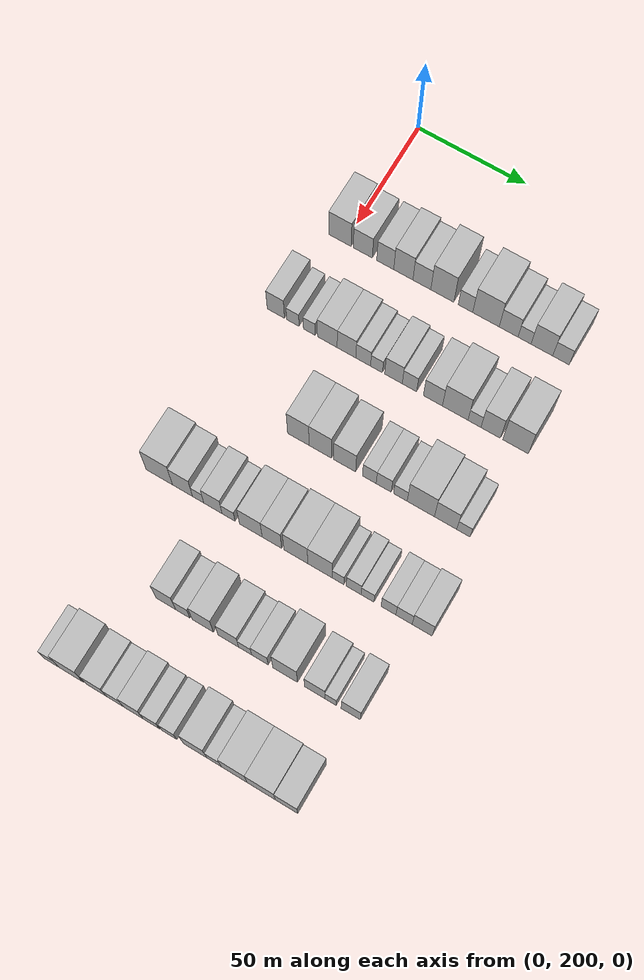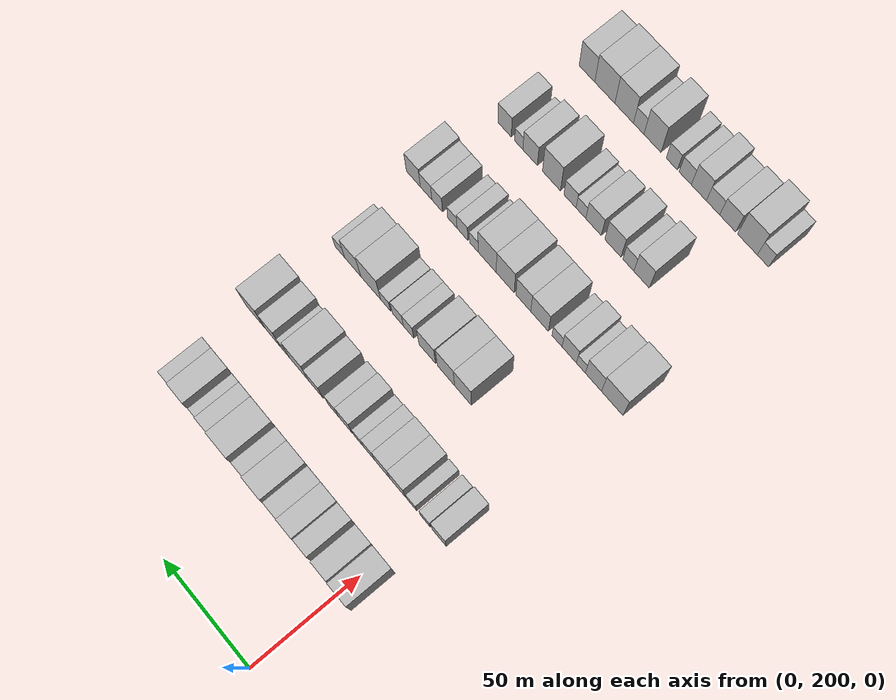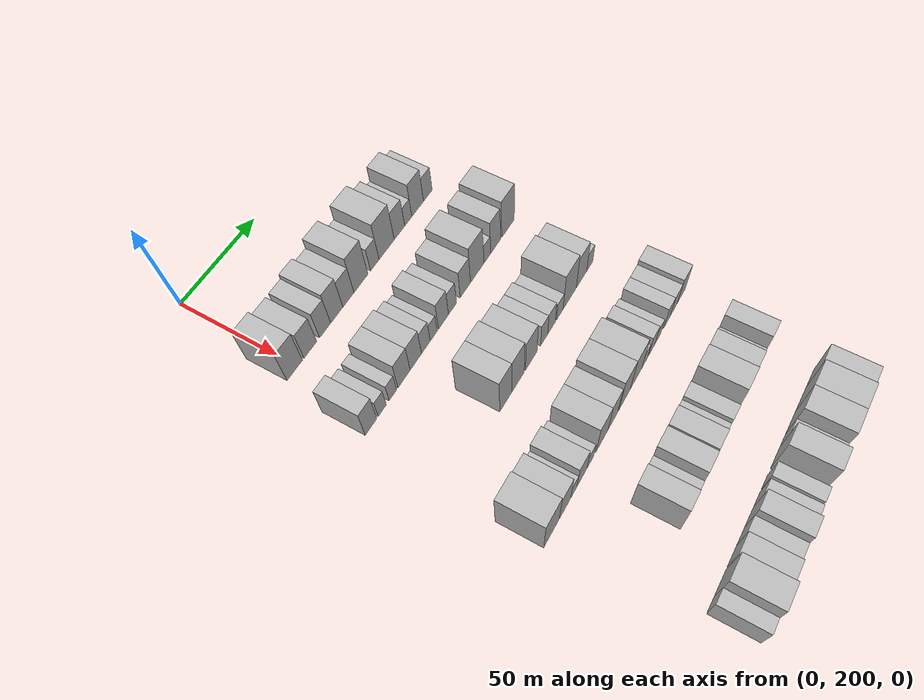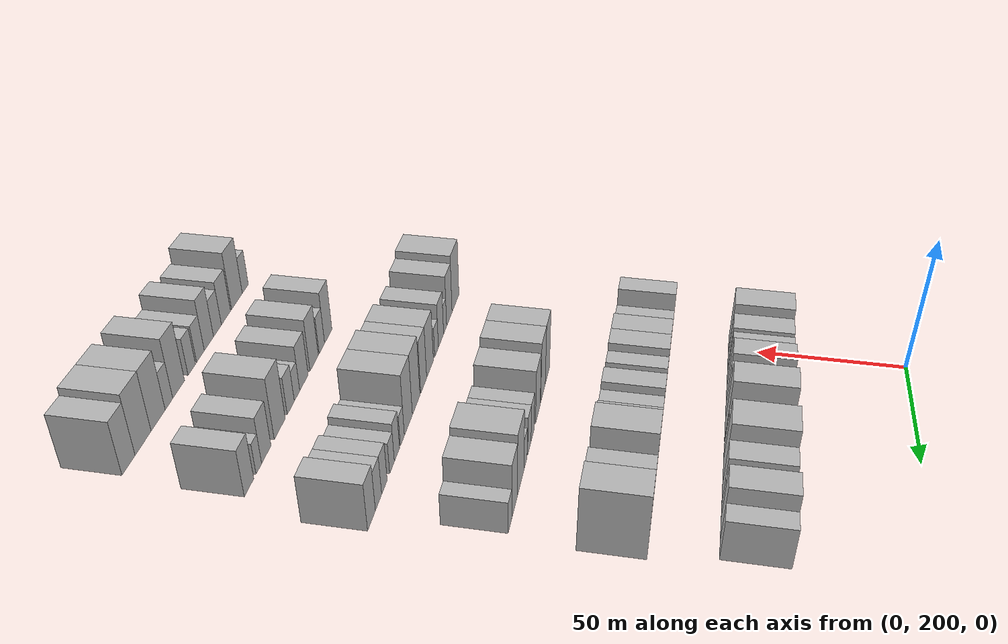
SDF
<sdf version="1.6">
 <world name="default">
  <model name="building_91">
   <static>1</static>
   <pose>50.0000 197.7986 0 0.000000 0.000000 0.000000</pose>
   <link name="link">
    <pose>0 0 10.50 0 0 0</pose>
    <collision name="collision"><geometry><box><size>20.0000 10.4036 21.0000</size></box></geometry></collision>
    <visual name="visual">
     <cast_shadows>0</cast_shadows>
     <geometry><box><size>20.0000 10.4036 21.0000</size></box></geometry>
     <material>
      <script>
       <uri>model://HANNAS_wall/materials/scripts</uri>
       <uri>model://HANNAS_wall/materials/textures</uri>
       <name>vrc/HANNAS_wall</name>
      </script>
     </material>
    </visual>
   </link>
  </model>
  <model name="building_92">
   <static>1</static>
   <pose>50.0000 208.4026 0 0.000000 0.000000 0.000000</pose>
   <link name="link">
    <pose>0 0 9.00 0 0 0</pose>
    <collision name="collision"><geometry><box><size>20.0000 8.8043 18.0000</size></box></geometry></collision>
    <visual name="visual">
     <cast_shadows>0</cast_shadows>
     <geometry><box><size>20.0000 8.8043 18.0000</size></box></geometry>
     <material>
      <script>
       <uri>model://HANNAS_wall/materials/scripts</uri>
       <uri>model://HANNAS_wall/materials/textures</uri>
       <name>vrc/HANNAS_wall</name>
      </script>
     </material>
    </visual>
   </link>
  </model>
  <model name="building_93">
   <static>1</static>
   <pose>50.0000 218.7358 0 0.000000 0.000000 0.000000</pose>
   <link name="link">
    <pose>0 0 9.00 0 0 0</pose>
    <collision name="collision"><geometry><box><size>20.0000 7.8621 18.0000</size></box></geometry></collision>
    <visual name="visual">
     <cast_shadows>0</cast_shadows>
     <geometry><box><size>20.0000 7.8621 18.0000</size></box></geometry>
     <material>
      <script>
       <uri>model://HANNAS_wall/materials/scripts</uri>
       <uri>model://HANNAS_wall/materials/textures</uri>
       <name>vrc/HANNAS_wall</name>
      </script>
     </material>
    </visual>
   </link>
  </model>
  <model name="building_94">
   <static>1</static>
   <pose>50.0000 227.0528 0 0.000000 0.000000 0.000000</pose>
   <link name="link">
    <pose>0 0 10.50 0 0 0</pose>
    <collision name="collision"><geometry><box><size>20.0000 8.7718 21.0000</size></box></geometry></collision>
    <visual name="visual">
     <cast_shadows>0</cast_shadows>
     <geometry><box><size>20.0000 8.7718 21.0000</size></box></geometry>
     <material>
      <script>
       <uri>model://HANNAS_wall/materials/scripts</uri>
       <uri>model://HANNAS_wall/materials/textures</uri>
       <name>vrc/HANNAS_wall</name>
      </script>
     </material>
    </visual>
   </link>
  </model>
  <model name="building_95">
   <static>1</static>
   <pose>50.0000 235.5078 0 0.000000 0.000000 0.000000</pose>
   <link name="link">
    <pose>0 0 9.00 0 0 0</pose>
    <collision name="collision"><geometry><box><size>20.0000 8.1382 18.0000</size></box></geometry></collision>
    <visual name="visual">
     <cast_shadows>0</cast_shadows>
     <geometry><box><size>20.0000 8.1382 18.0000</size></box></geometry>
     <material>
      <script>
       <uri>model://HANNAS_wall/materials/scripts</uri>
       <uri>model://HANNAS_wall/materials/textures</uri>
       <name>vrc/HANNAS_wall</name>
      </script>
     </material>
    </visual>
   </link>
  </model>
  <model name="building_96">
   <static>1</static>
   <pose>50.0000 244.8050 0 0.000000 0.000000 0.000000</pose>
   <link name="link">
    <pose>0 0 12.00 0 0 0</pose>
    <collision name="collision"><geometry><box><size>20.0000 10.4564 24.0000</size></box></geometry></collision>
    <visual name="visual">
     <cast_shadows>0</cast_shadows>
     <geometry><box><size>20.0000 10.4564 24.0000</size></box></geometry>
     <material>
      <script>
       <uri>model://HANNAS_wall/materials/scripts</uri>
       <uri>model://HANNAS_wall/materials/textures</uri>
       <name>vrc/HANNAS_wall</name>
      </script>
     </material>
    </visual>
   </link>
  </model>
  <model name="building_97">
   <static>1</static>
   <pose>50.0000 255.3095 0 0.000000 0.000000 0.000000</pose>
   <link name="link">
    <pose>0 0 7.50 0 0 0</pose>
    <collision name="collision"><geometry><box><size>20.0000 6.5526 15.0000</size></box></geometry></collision>
    <visual name="visual">
     <cast_shadows>0</cast_shadows>
     <geometry><box><size>20.0000 6.5526 15.0000</size></box></geometry>
     <material>
      <script>
       <uri>model://HANNAS_wall/materials/scripts</uri>
       <uri>model://HANNAS_wall/materials/textures</uri>
       <name>vrc/HANNAS_wall</name>
      </script>
     </material>
    </visual>
   </link>
  </model>
  <model name="building_98">
   <static>1</static>
   <pose>50.0000 264.5338 0 0.000000 0.000000 0.000000</pose>
   <link name="link">
    <pose>0 0 12.00 0 0 0</pose>
    <collision name="collision"><geometry><box><size>20.0000 11.8959 24.0000</size></box></geometry></collision>
    <visual name="visual">
     <cast_shadows>0</cast_shadows>
     <geometry><box><size>20.0000 11.8959 24.0000</size></box></geometry>
     <material>
      <script>
       <uri>model://HANNAS_wall/materials/scripts</uri>
       <uri>model://HANNAS_wall/materials/textures</uri>
       <name>vrc/HANNAS_wall</name>
      </script>
     </material>
    </visual>
   </link>
  </model>
  <model name="building_99">
   <static>1</static>
   <pose>50.0000 274.6933 0 0.000000 0.000000 0.000000</pose>
   <link name="link">
    <pose>0 0 9.00 0 0 0</pose>
    <collision name="collision"><geometry><box><size>20.0000 8.4232 18.0000</size></box></geometry></collision>
    <visual name="visual">
     <cast_shadows>0</cast_shadows>
     <geometry><box><size>20.0000 8.4232 18.0000</size></box></geometry>
     <material>
      <script>
       <uri>model://HANNAS_wall/materials/scripts</uri>
       <uri>model://HANNAS_wall/materials/textures</uri>
       <name>vrc/HANNAS_wall</name>
      </script>
     </material>
    </visual>
   </link>
  </model>
  <model name="building_100">
   <static>1</static>
   <pose>50.0000 281.8011 0 0.000000 0.000000 0.000000</pose>
   <link name="link">
    <pose>0 0 6.00 0 0 0</pose>
    <collision name="collision"><geometry><box><size>20.0000 5.7924 12.0000</size></box></geometry></collision>
    <visual name="visual">
     <cast_shadows>0</cast_shadows>
     <geometry><box><size>20.0000 5.7924 12.0000</size></box></geometry>
     <material>
      <script>
       <uri>model://HANNAS_wall/materials/scripts</uri>
       <uri>model://HANNAS_wall/materials/textures</uri>
       <name>vrc/HANNAS_wall</name>
      </script>
     </material>
    </visual>
   </link>
  </model>
  <model name="building_101">
   <static>1</static>
   <pose>50.0000 289.5091 0 0.000000 0.000000 0.000000</pose>
   <link name="link">
    <pose>0 0 10.50 0 0 0</pose>
    <collision name="collision"><geometry><box><size>20.0000 9.6236 21.0000</size></box></geometry></collision>
    <visual name="visual">
     <cast_shadows>0</cast_shadows>
     <geometry><box><size>20.0000 9.6236 21.0000</size></box></geometry>
     <material>
      <script>
       <uri>model://HANNAS_wall/materials/scripts</uri>
       <uri>model://HANNAS_wall/materials/textures</uri>
       <name>vrc/HANNAS_wall</name>
      </script>
     </material>
    </visual>
   </link>
  </model>
  <model name="building_102">
   <static>1</static>
   <pose>50.0000 297.9650 0 0.000000 0.000000 0.000000</pose>
   <link name="link">
    <pose>0 0 7.50 0 0 0</pose>
    <collision name="collision"><geometry><box><size>20.0000 7.2880 15.0000</size></box></geometry></collision>
    <visual name="visual">
     <cast_shadows>0</cast_shadows>
     <geometry><box><size>20.0000 7.2880 15.0000</size></box></geometry>
     <material>
      <script>
       <uri>model://HANNAS_wall/materials/scripts</uri>
       <uri>model://HANNAS_wall/materials/textures</uri>
       <name>vrc/HANNAS_wall</name>
      </script>
     </material>
    </visual>
   </link>
  </model>
  <model name="building_212">
   <static>1</static>
   <pose>90.0000 192.1189 0 0.000000 0.000000 0.000000</pose>
   <link name="link">
    <pose>0 0 9.00 0 0 0</pose>
    <collision name="collision"><geometry><box><size>20.0000 7.9600 18.0000</size></box></geometry></collision>
    <visual name="visual">
     <cast_shadows>0</cast_shadows>
     <geometry><box><size>20.0000 7.9600 18.0000</size></box></geometry>
     <material>
      <script>
       <uri>model://HANNAS_wall/materials/scripts</uri>
       <uri>model://HANNAS_wall/materials/textures</uri>
       <name>vrc/HANNAS_wall</name>
      </script>
     </material>
    </visual>
   </link>
  </model>
  <model name="building_213">
   <static>1</static>
   <pose>90.0000 199.9513 0 0.000000 0.000000 0.000000</pose>
   <link name="link">
    <pose>0 0 6.00 0 0 0</pose>
    <collision name="collision"><geometry><box><size>20.0000 5.7048 12.0000</size></box></geometry></collision>
    <visual name="visual">
     <cast_shadows>0</cast_shadows>
     <geometry><box><size>20.0000 5.7048 12.0000</size></box></geometry>
     <material>
      <script>
       <uri>model://HANNAS_wall/materials/scripts</uri>
       <uri>model://HANNAS_wall/materials/textures</uri>
       <name>vrc/HANNAS_wall</name>
      </script>
     </material>
    </visual>
   </link>
  </model>
  <model name="building_214">
   <static>1</static>
   <pose>90.0000 207.4841 0 0.000000 0.000000 0.000000</pose>
   <link name="link">
    <pose>0 0 6.00 0 0 0</pose>
    <collision name="collision"><geometry><box><size>20.0000 5.3609 12.0000</size></box></geometry></collision>
    <visual name="visual">
     <cast_shadows>0</cast_shadows>
     <geometry><box><size>20.0000 5.3609 12.0000</size></box></geometry>
     <material>
      <script>
       <uri>model://HANNAS_wall/materials/scripts</uri>
       <uri>model://HANNAS_wall/materials/textures</uri>
       <name>vrc/HANNAS_wall</name>
      </script>
     </material>
    </visual>
   </link>
  </model>
  <model name="building_215">
   <static>1</static>
   <pose>90.0000 215.6615 0 0.000000 0.000000 0.000000</pose>
   <link name="link">
    <pose>0 0 9.00 0 0 0</pose>
    <collision name="collision"><geometry><box><size>20.0000 8.9939 18.0000</size></box></geometry></collision>
    <visual name="visual">
     <cast_shadows>0</cast_shadows>
     <geometry><box><size>20.0000 8.9939 18.0000</size></box></geometry>
     <material>
      <script>
       <uri>model://HANNAS_wall/materials/scripts</uri>
       <uri>model://HANNAS_wall/materials/textures</uri>
       <name>vrc/HANNAS_wall</name>
      </script>
     </material>
    </visual>
   </link>
  </model>
  <model name="building_216">
   <static>1</static>
   <pose>90.0000 224.4046 0 0.000000 0.000000 0.000000</pose>
   <link name="link">
    <pose>0 0 9.00 0 0 0</pose>
    <collision name="collision"><geometry><box><size>20.0000 8.4923 18.0000</size></box></geometry></collision>
    <visual name="visual">
     <cast_shadows>0</cast_shadows>
     <geometry><box><size>20.0000 8.4923 18.0000</size></box></geometry>
     <material>
      <script>
       <uri>model://HANNAS_wall/materials/scripts</uri>
       <uri>model://HANNAS_wall/materials/textures</uri>
       <name>vrc/HANNAS_wall</name>
      </script>
     </material>
    </visual>
   </link>
  </model>
  <model name="building_217">
   <static>1</static>
   <pose>90.0000 231.9796 0 0.000000 0.000000 0.000000</pose>
   <link name="link">
    <pose>0 0 7.50 0 0 0</pose>
    <collision name="collision"><geometry><box><size>20.0000 6.6578 15.0000</size></box></geometry></collision>
    <visual name="visual">
     <cast_shadows>0</cast_shadows>
     <geometry><box><size>20.0000 6.6578 15.0000</size></box></geometry>
     <material>
      <script>
       <uri>model://HANNAS_wall/materials/scripts</uri>
       <uri>model://HANNAS_wall/materials/textures</uri>
       <name>vrc/HANNAS_wall</name>
      </script>
     </material>
    </visual>
   </link>
  </model>
  <model name="building_218">
   <static>1</static>
   <pose>90.0000 237.9898 0 0.000000 0.000000 0.000000</pose>
   <link name="link">
    <pose>0 0 6.00 0 0 0</pose>
    <collision name="collision"><geometry><box><size>20.0000 5.3625 12.0000</size></box></geometry></collision>
    <visual name="visual">
     <cast_shadows>0</cast_shadows>
     <geometry><box><size>20.0000 5.3625 12.0000</size></box></geometry>
     <material>
      <script>
       <uri>model://HANNAS_wall/materials/scripts</uri>
       <uri>model://HANNAS_wall/materials/textures</uri>
       <name>vrc/HANNAS_wall</name>
      </script>
     </material>
    </visual>
   </link>
  </model>
  <model name="building_219">
   <static>1</static>
   <pose>90.0000 245.6102 0 0.000000 0.000000 0.000000</pose>
   <link name="link">
    <pose>0 0 9.00 0 0 0</pose>
    <collision name="collision"><geometry><box><size>20.0000 7.8783 18.0000</size></box></geometry></collision>
    <visual name="visual">
     <cast_shadows>0</cast_shadows>
     <geometry><box><size>20.0000 7.8783 18.0000</size></box></geometry>
     <material>
      <script>
       <uri>model://HANNAS_wall/materials/scripts</uri>
       <uri>model://HANNAS_wall/materials/textures</uri>
       <name>vrc/HANNAS_wall</name>
      </script>
     </material>
    </visual>
   </link>
  </model>
  <model name="building_220">
   <static>1</static>
   <pose>90.0000 252.7603 0 0.000000 0.000000 0.000000</pose>
   <link name="link">
    <pose>0 0 7.50 0 0 0</pose>
    <collision name="collision"><geometry><box><size>20.0000 6.4219 15.0000</size></box></geometry></collision>
    <visual name="visual">
     <cast_shadows>0</cast_shadows>
     <geometry><box><size>20.0000 6.4219 15.0000</size></box></geometry>
     <material>
      <script>
       <uri>model://HANNAS_wall/materials/scripts</uri>
       <uri>model://HANNAS_wall/materials/textures</uri>
       <name>vrc/HANNAS_wall</name>
      </script>
     </material>
    </visual>
   </link>
  </model>
  <model name="building_221">
   <static>1</static>
   <pose>90.0000 263.2060 0 0.000000 0.000000 0.000000</pose>
   <link name="link">
    <pose>0 0 9.00 0 0 0</pose>
    <collision name="collision"><geometry><box><size>20.0000 8.4697 18.0000</size></box></geometry></collision>
    <visual name="visual">
     <cast_shadows>0</cast_shadows>
     <geometry><box><size>20.0000 8.4697 18.0000</size></box></geometry>
     <material>
      <script>
       <uri>model://HANNAS_wall/materials/scripts</uri>
       <uri>model://HANNAS_wall/materials/textures</uri>
       <name>vrc/HANNAS_wall</name>
      </script>
     </material>
    </visual>
   </link>
  </model>
  <model name="building_222">
   <static>1</static>
   <pose>90.0000 273.1022 0 0.000000 0.000000 0.000000</pose>
   <link name="link">
    <pose>0 0 12.00 0 0 0</pose>
    <collision name="collision"><geometry><box><size>20.0000 11.3226 24.0000</size></box></geometry></collision>
    <visual name="visual">
     <cast_shadows>0</cast_shadows>
     <geometry><box><size>20.0000 11.3226 24.0000</size></box></geometry>
     <material>
      <script>
       <uri>model://HANNAS_wall/materials/scripts</uri>
       <uri>model://HANNAS_wall/materials/textures</uri>
       <name>vrc/HANNAS_wall</name>
      </script>
     </material>
    </visual>
   </link>
  </model>
  <model name="building_223">
   <static>1</static>
   <pose>90.0000 281.6244 0 0.000000 0.000000 0.000000</pose>
   <link name="link">
    <pose>0 0 6.00 0 0 0</pose>
    <collision name="collision"><geometry><box><size>20.0000 5.7218 12.0000</size></box></geometry></collision>
    <visual name="visual">
     <cast_shadows>0</cast_shadows>
     <geometry><box><size>20.0000 5.7218 12.0000</size></box></geometry>
     <material>
      <script>
       <uri>model://HANNAS_wall/materials/scripts</uri>
       <uri>model://HANNAS_wall/materials/textures</uri>
       <name>vrc/HANNAS_wall</name>
      </script>
     </material>
    </visual>
   </link>
  </model>
  <model name="building_224">
   <static>1</static>
   <pose>90.0000 288.7514 0 0.000000 0.000000 0.000000</pose>
   <link name="link">
    <pose>0 0 10.50 0 0 0</pose>
    <collision name="collision"><geometry><box><size>20.0000 8.5321 21.0000</size></box></geometry></collision>
    <visual name="visual">
     <cast_shadows>0</cast_shadows>
     <geometry><box><size>20.0000 8.5321 21.0000</size></box></geometry>
     <material>
      <script>
       <uri>model://HANNAS_wall/materials/scripts</uri>
       <uri>model://HANNAS_wall/materials/textures</uri>
       <name>vrc/HANNAS_wall</name>
      </script>
     </material>
    </visual>
   </link>
  </model>
  <model name="building_225">
   <static>1</static>
   <pose>90.0000 299.6057 0 0.000000 0.000000 0.000000</pose>
   <link name="link">
    <pose>0 0 12.00 0 0 0</pose>
    <collision name="collision"><geometry><box><size>20.0000 11.1766 24.0000</size></box></geometry></collision>
    <visual name="visual">
     <cast_shadows>0</cast_shadows>
     <geometry><box><size>20.0000 11.1766 24.0000</size></box></geometry>
     <material>
      <script>
       <uri>model://HANNAS_wall/materials/scripts</uri>
       <uri>model://HANNAS_wall/materials/textures</uri>
       <name>vrc/HANNAS_wall</name>
      </script>
     </material>
    </visual>
   </link>
  </model>
  <model name="building_356">
   <static>1</static>
   <pose>130.0000 226.5550 0 0.000000 0.000000 0.000000</pose>
   <link name="link">
    <pose>0 0 12.00 0 0 0</pose>
    <collision name="collision"><geometry><box><size>20.0000 9.6647 24.0000</size></box></geometry></collision>
    <visual name="visual">
     <cast_shadows>0</cast_shadows>
     <geometry><box><size>20.0000 9.6647 24.0000</size></box></geometry>
     <material>
      <script>
       <uri>model://HANNAS_wall/materials/scripts</uri>
       <uri>model://HANNAS_wall/materials/textures</uri>
       <name>vrc/HANNAS_wall</name>
      </script>
     </material>
    </visual>
   </link>
  </model>
  <model name="building_357">
   <static>1</static>
   <pose>130.0000 236.3551 0 0.000000 0.000000 0.000000</pose>
   <link name="link">
    <pose>0 0 12.00 0 0 0</pose>
    <collision name="collision"><geometry><box><size>20.0000 9.9355 24.0000</size></box></geometry></collision>
    <visual name="visual">
     <cast_shadows>0</cast_shadows>
     <geometry><box><size>20.0000 9.9355 24.0000</size></box></geometry>
     <material>
      <script>
       <uri>model://HANNAS_wall/materials/scripts</uri>
       <uri>model://HANNAS_wall/materials/textures</uri>
       <name>vrc/HANNAS_wall</name>
      </script>
     </material>
    </visual>
   </link>
  </model>
  <model name="building_358">
   <static>1</static>
   <pose>130.0000 247.1875 0 0.000000 0.000000 0.000000</pose>
   <link name="link">
    <pose>0 0 10.50 0 0 0</pose>
    <collision name="collision"><geometry><box><size>20.0000 9.7294 21.0000</size></box></geometry></collision>
    <visual name="visual">
     <cast_shadows>0</cast_shadows>
     <geometry><box><size>20.0000 9.7294 21.0000</size></box></geometry>
     <material>
      <script>
       <uri>model://HANNAS_wall/materials/scripts</uri>
       <uri>model://HANNAS_wall/materials/textures</uri>
       <name>vrc/HANNAS_wall</name>
      </script>
     </material>
    </visual>
   </link>
  </model>
  <model name="building_359">
   <static>1</static>
   <pose>130.0000 258.0774 0 0.000000 0.000000 0.000000</pose>
   <link name="link">
    <pose>0 0 7.50 0 0 0</pose>
    <collision name="collision"><geometry><box><size>20.0000 6.0506 15.0000</size></box></geometry></collision>
    <visual name="visual">
     <cast_shadows>0</cast_shadows>
     <geometry><box><size>20.0000 6.0506 15.0000</size></box></geometry>
     <material>
      <script>
       <uri>model://HANNAS_wall/materials/scripts</uri>
       <uri>model://HANNAS_wall/materials/textures</uri>
       <name>vrc/HANNAS_wall</name>
      </script>
     </material>
    </visual>
   </link>
  </model>
  <model name="building_360">
   <static>1</static>
   <pose>130.0000 264.4119 0 0.000000 0.000000 0.000000</pose>
   <link name="link">
    <pose>0 0 7.50 0 0 0</pose>
    <collision name="collision"><geometry><box><size>20.0000 6.6183 15.0000</size></box></geometry></collision>
    <visual name="visual">
     <cast_shadows>0</cast_shadows>
     <geometry><box><size>20.0000 6.6183 15.0000</size></box></geometry>
     <material>
      <script>
       <uri>model://HANNAS_wall/materials/scripts</uri>
       <uri>model://HANNAS_wall/materials/textures</uri>
       <name>vrc/HANNAS_wall</name>
      </script>
     </material>
    </visual>
   </link>
  </model>
  <model name="building_361">
   <static>1</static>
   <pose>130.0000 271.7084 0 0.000000 0.000000 0.000000</pose>
   <link name="link">
    <pose>0 0 6.00 0 0 0</pose>
    <collision name="collision"><geometry><box><size>20.0000 5.9747 12.0000</size></box></geometry></collision>
    <visual name="visual">
     <cast_shadows>0</cast_shadows>
     <geometry><box><size>20.0000 5.9747 12.0000</size></box></geometry>
     <material>
      <script>
       <uri>model://HANNAS_wall/materials/scripts</uri>
       <uri>model://HANNAS_wall/materials/textures</uri>
       <name>vrc/HANNAS_wall</name>
      </script>
     </material>
    </visual>
   </link>
  </model>
  <model name="building_362">
   <static>1</static>
   <pose>130.0000 280.6241 0 0.000000 0.000000 0.000000</pose>
   <link name="link">
    <pose>0 0 12.00 0 0 0</pose>
    <collision name="collision"><geometry><box><size>20.0000 11.8567 24.0000</size></box></geometry></collision>
    <visual name="visual">
     <cast_shadows>0</cast_shadows>
     <geometry><box><size>20.0000 11.8567 24.0000</size></box></geometry>
     <material>
      <script>
       <uri>model://HANNAS_wall/materials/scripts</uri>
       <uri>model://HANNAS_wall/materials/textures</uri>
       <name>vrc/HANNAS_wall</name>
      </script>
     </material>
    </visual>
   </link>
  </model>
  <model name="building_363">
   <static>1</static>
   <pose>130.0000 291.3994 0 0.000000 0.000000 0.000000</pose>
   <link name="link">
    <pose>0 0 10.50 0 0 0</pose>
    <collision name="collision"><geometry><box><size>20.0000 9.6939 21.0000</size></box></geometry></collision>
    <visual name="visual">
     <cast_shadows>0</cast_shadows>
     <geometry><box><size>20.0000 9.6939 21.0000</size></box></geometry>
     <material>
      <script>
       <uri>model://HANNAS_wall/materials/scripts</uri>
       <uri>model://HANNAS_wall/materials/textures</uri>
       <name>vrc/HANNAS_wall</name>
      </script>
     </material>
    </visual>
   </link>
  </model>
  <model name="building_364">
   <static>1</static>
   <pose>130.0000 299.1187 0 0.000000 0.000000 0.000000</pose>
   <link name="link">
    <pose>0 0 6.00 0 0 0</pose>
    <collision name="collision"><geometry><box><size>20.0000 5.7447 12.0000</size></box></geometry></collision>
    <visual name="visual">
     <cast_shadows>0</cast_shadows>
     <geometry><box><size>20.0000 5.7447 12.0000</size></box></geometry>
     <material>
      <script>
       <uri>model://HANNAS_wall/materials/scripts</uri>
       <uri>model://HANNAS_wall/materials/textures</uri>
       <name>vrc/HANNAS_wall</name>
      </script>
     </material>
    </visual>
   </link>
  </model>
  <model name="building_488">
   <static>1</static>
   <pose>170.0000 188.8367 0 0.000000 0.000000 0.000000</pose>
   <link name="link">
    <pose>0 0 12.00 0 0 0</pose>
    <collision name="collision"><geometry><box><size>20.0000 11.9191 24.0000</size></box></geometry></collision>
    <visual name="visual">
     <cast_shadows>0</cast_shadows>
     <geometry><box><size>20.0000 11.9191 24.0000</size></box></geometry>
     <material>
      <script>
       <uri>model://HANNAS_wall/materials/scripts</uri>
       <uri>model://HANNAS_wall/materials/textures</uri>
       <name>vrc/HANNAS_wall</name>
      </script>
     </material>
    </visual>
   </link>
  </model>
  <model name="building_489">
   <static>1</static>
   <pose>170.0000 199.3010 0 0.000000 0.000000 0.000000</pose>
   <link name="link">
    <pose>0 0 10.50 0 0 0</pose>
    <collision name="collision"><geometry><box><size>20.0000 9.0094 21.0000</size></box></geometry></collision>
    <visual name="visual">
     <cast_shadows>0</cast_shadows>
     <geometry><box><size>20.0000 9.0094 21.0000</size></box></geometry>
     <material>
      <script>
       <uri>model://HANNAS_wall/materials/scripts</uri>
       <uri>model://HANNAS_wall/materials/textures</uri>
       <name>vrc/HANNAS_wall</name>
      </script>
     </material>
    </visual>
   </link>
  </model>
  <model name="building_490">
   <static>1</static>
   <pose>170.0000 206.3034 0 0.000000 0.000000 0.000000</pose>
   <link name="link">
    <pose>0 0 6.00 0 0 0</pose>
    <collision name="collision"><geometry><box><size>20.0000 4.9953 12.0000</size></box></geometry></collision>
    <visual name="visual">
     <cast_shadows>0</cast_shadows>
     <geometry><box><size>20.0000 4.9953 12.0000</size></box></geometry>
     <material>
      <script>
       <uri>model://HANNAS_wall/materials/scripts</uri>
       <uri>model://HANNAS_wall/materials/textures</uri>
       <name>vrc/HANNAS_wall</name>
      </script>
     </material>
    </visual>
   </link>
  </model>
  <model name="building_491">
   <static>1</static>
   <pose>170.0000 212.8984 0 0.000000 0.000000 0.000000</pose>
   <link name="link">
    <pose>0 0 9.00 0 0 0</pose>
    <collision name="collision"><geometry><box><size>20.0000 8.1945 18.0000</size></box></geometry></collision>
    <visual name="visual">
     <cast_shadows>0</cast_shadows>
     <geometry><box><size>20.0000 8.1945 18.0000</size></box></geometry>
     <material>
      <script>
       <uri>model://HANNAS_wall/materials/scripts</uri>
       <uri>model://HANNAS_wall/materials/textures</uri>
       <name>vrc/HANNAS_wall</name>
      </script>
     </material>
    </visual>
   </link>
  </model>
  <model name="building_492">
   <static>1</static>
   <pose>170.0000 219.8680 0 0.000000 0.000000 0.000000</pose>
   <link name="link">
    <pose>0 0 6.00 0 0 0</pose>
    <collision name="collision"><geometry><box><size>20.0000 5.7448 12.0000</size></box></geometry></collision>
    <visual name="visual">
     <cast_shadows>0</cast_shadows>
     <geometry><box><size>20.0000 5.7448 12.0000</size></box></geometry>
     <material>
      <script>
       <uri>model://HANNAS_wall/materials/scripts</uri>
       <uri>model://HANNAS_wall/materials/textures</uri>
       <name>vrc/HANNAS_wall</name>
      </script>
     </material>
    </visual>
   </link>
  </model>
  <model name="building_493">
   <static>1</static>
   <pose>170.0000 229.7696 0 0.000000 0.000000 0.000000</pose>
   <link name="link">
    <pose>0 0 10.50 0 0 0</pose>
    <collision name="collision"><geometry><box><size>20.0000 10.0583 21.0000</size></box></geometry></collision>
    <visual name="visual">
     <cast_shadows>0</cast_shadows>
     <geometry><box><size>20.0000 10.0583 21.0000</size></box></geometry>
     <material>
      <script>
       <uri>model://HANNAS_wall/materials/scripts</uri>
       <uri>model://HANNAS_wall/materials/textures</uri>
       <name>vrc/HANNAS_wall</name>
      </script>
     </material>
    </visual>
   </link>
  </model>
  <model name="building_494">
   <static>1</static>
   <pose>170.0000 239.0706 0 0.000000 0.000000 0.000000</pose>
   <link name="link">
    <pose>0 0 10.50 0 0 0</pose>
    <collision name="collision"><geometry><box><size>20.0000 8.5436 21.0000</size></box></geometry></collision>
    <visual name="visual">
     <cast_shadows>0</cast_shadows>
     <geometry><box><size>20.0000 8.5436 21.0000</size></box></geometry>
     <material>
      <script>
       <uri>model://HANNAS_wall/materials/scripts</uri>
       <uri>model://HANNAS_wall/materials/textures</uri>
       <name>vrc/HANNAS_wall</name>
      </script>
     </material>
    </visual>
   </link>
  </model>
  <model name="building_495">
   <static>1</static>
   <pose>170.0000 249.5585 0 0.000000 0.000000 0.000000</pose>
   <link name="link">
    <pose>0 0 12.00 0 0 0</pose>
    <collision name="collision"><geometry><box><size>20.0000 10.4323 24.0000</size></box></geometry></collision>
    <visual name="visual">
     <cast_shadows>0</cast_shadows>
     <geometry><box><size>20.0000 10.4323 24.0000</size></box></geometry>
     <material>
      <script>
       <uri>model://HANNAS_wall/materials/scripts</uri>
       <uri>model://HANNAS_wall/materials/textures</uri>
       <name>vrc/HANNAS_wall</name>
      </script>
     </material>
    </visual>
   </link>
  </model>
  <model name="building_496">
   <static>1</static>
   <pose>170.0000 260.0530 0 0.000000 0.000000 0.000000</pose>
   <link name="link">
    <pose>0 0 12.00 0 0 0</pose>
    <collision name="collision"><geometry><box><size>20.0000 10.5567 24.0000</size></box></geometry></collision>
    <visual name="visual">
     <cast_shadows>0</cast_shadows>
     <geometry><box><size>20.0000 10.5567 24.0000</size></box></geometry>
     <material>
      <script>
       <uri>model://HANNAS_wall/materials/scripts</uri>
       <uri>model://HANNAS_wall/materials/textures</uri>
       <name>vrc/HANNAS_wall</name>
      </script>
     </material>
    </visual>
   </link>
  </model>
  <model name="building_497">
   <static>1</static>
   <pose>170.0000 267.8899 0 0.000000 0.000000 0.000000</pose>
   <link name="link">
    <pose>0 0 6.00 0 0 0</pose>
    <collision name="collision"><geometry><box><size>20.0000 5.1171 12.0000</size></box></geometry></collision>
    <visual name="visual">
     <cast_shadows>0</cast_shadows>
     <geometry><box><size>20.0000 5.1171 12.0000</size></box></geometry>
     <material>
      <script>
       <uri>model://HANNAS_wall/materials/scripts</uri>
       <uri>model://HANNAS_wall/materials/textures</uri>
       <name>vrc/HANNAS_wall</name>
      </script>
     </material>
    </visual>
   </link>
  </model>
  <model name="building_498">
   <static>1</static>
   <pose>170.0000 274.6512 0 0.000000 0.000000 0.000000</pose>
   <link name="link">
    <pose>0 0 7.50 0 0 0</pose>
    <collision name="collision"><geometry><box><size>20.0000 6.4054 15.0000</size></box></geometry></collision>
    <visual name="visual">
     <cast_shadows>0</cast_shadows>
     <geometry><box><size>20.0000 6.4054 15.0000</size></box></geometry>
     <material>
      <script>
       <uri>model://HANNAS_wall/materials/scripts</uri>
       <uri>model://HANNAS_wall/materials/textures</uri>
       <name>vrc/HANNAS_wall</name>
      </script>
     </material>
    </visual>
   </link>
  </model>
  <model name="building_499">
   <static>1</static>
   <pose>170.0000 280.6406 0 0.000000 0.000000 0.000000</pose>
   <link name="link">
    <pose>0 0 6.00 0 0 0</pose>
    <collision name="collision"><geometry><box><size>20.0000 5.5734 12.0000</size></box></geometry></collision>
    <visual name="visual">
     <cast_shadows>0</cast_shadows>
     <geometry><box><size>20.0000 5.5734 12.0000</size></box></geometry>
     <material>
      <script>
       <uri>model://HANNAS_wall/materials/scripts</uri>
       <uri>model://HANNAS_wall/materials/textures</uri>
       <name>vrc/HANNAS_wall</name>
      </script>
     </material>
    </visual>
   </link>
  </model>
  <model name="building_500">
   <static>1</static>
   <pose>170.0000 289.6067 0 0.000000 0.000000 0.000000</pose>
   <link name="link">
    <pose>0 0 7.50 0 0 0</pose>
    <collision name="collision"><geometry><box><size>20.0000 6.3587 15.0000</size></box></geometry></collision>
    <visual name="visual">
     <cast_shadows>0</cast_shadows>
     <geometry><box><size>20.0000 6.3587 15.0000</size></box></geometry>
     <material>
      <script>
       <uri>model://HANNAS_wall/materials/scripts</uri>
       <uri>model://HANNAS_wall/materials/textures</uri>
       <name>vrc/HANNAS_wall</name>
      </script>
     </material>
    </visual>
   </link>
  </model>
  <model name="building_501">
   <static>1</static>
   <pose>170.0000 296.2749 0 0.000000 0.000000 0.000000</pose>
   <link name="link">
    <pose>0 0 7.50 0 0 0</pose>
    <collision name="collision"><geometry><box><size>20.0000 6.9778 15.0000</size></box></geometry></collision>
    <visual name="visual">
     <cast_shadows>0</cast_shadows>
     <geometry><box><size>20.0000 6.9778 15.0000</size></box></geometry>
     <material>
      <script>
       <uri>model://HANNAS_wall/materials/scripts</uri>
       <uri>model://HANNAS_wall/materials/textures</uri>
       <name>vrc/HANNAS_wall</name>
      </script>
     </material>
    </visual>
   </link>
  </model>
  <model name="building_502">
   <static>1</static>
   <pose>170.0000 303.9936 0 0.000000 0.000000 0.000000</pose>
   <link name="link">
    <pose>0 0 9.00 0 0 0</pose>
    <collision name="collision"><geometry><box><size>20.0000 8.4596 18.0000</size></box></geometry></collision>
    <visual name="visual">
     <cast_shadows>0</cast_shadows>
     <geometry><box><size>20.0000 8.4596 18.0000</size></box></geometry>
     <material>
      <script>
       <uri>model://HANNAS_wall/materials/scripts</uri>
       <uri>model://HANNAS_wall/materials/textures</uri>
       <name>vrc/HANNAS_wall</name>
      </script>
     </material>
    </visual>
   </link>
  </model>
  <model name="building_619">
   <static>1</static>
   <pose>210.0000 217.2927 0 0.000000 0.000000 0.000000</pose>
   <link name="link">
    <pose>0 0 10.50 0 0 0</pose>
    <collision name="collision"><geometry><box><size>20.0000 8.6768 21.0000</size></box></geometry></collision>
    <visual name="visual">
     <cast_shadows>0</cast_shadows>
     <geometry><box><size>20.0000 8.6768 21.0000</size></box></geometry>
     <material>
      <script>
       <uri>model://HANNAS_wall/materials/scripts</uri>
       <uri>model://HANNAS_wall/materials/textures</uri>
       <name>vrc/HANNAS_wall</name>
      </script>
     </material>
    </visual>
   </link>
  </model>
  <model name="building_620">
   <static>1</static>
   <pose>210.0000 224.7628 0 0.000000 0.000000 0.000000</pose>
   <link name="link">
    <pose>0 0 7.50 0 0 0</pose>
    <collision name="collision"><geometry><box><size>20.0000 6.2633 15.0000</size></box></geometry></collision>
    <visual name="visual">
     <cast_shadows>0</cast_shadows>
     <geometry><box><size>20.0000 6.2633 15.0000</size></box></geometry>
     <material>
      <script>
       <uri>model://HANNAS_wall/materials/scripts</uri>
       <uri>model://HANNAS_wall/materials/textures</uri>
       <name>vrc/HANNAS_wall</name>
      </script>
     </material>
    </visual>
   </link>
  </model>
  <model name="building_621">
   <static>1</static>
   <pose>210.0000 233.5299 0 0.000000 0.000000 0.000000</pose>
   <link name="link">
    <pose>0 0 10.50 0 0 0</pose>
    <collision name="collision"><geometry><box><size>20.0000 9.2709 21.0000</size></box></geometry></collision>
    <visual name="visual">
     <cast_shadows>0</cast_shadows>
     <geometry><box><size>20.0000 9.2709 21.0000</size></box></geometry>
     <material>
      <script>
       <uri>model://HANNAS_wall/materials/scripts</uri>
       <uri>model://HANNAS_wall/materials/textures</uri>
       <name>vrc/HANNAS_wall</name>
      </script>
     </material>
    </visual>
   </link>
  </model>
  <model name="building_622">
   <static>1</static>
   <pose>210.0000 244.6267 0 0.000000 0.000000 0.000000</pose>
   <link name="link">
    <pose>0 0 9.00 0 0 0</pose>
    <collision name="collision"><geometry><box><size>20.0000 8.9227 18.0000</size></box></geometry></collision>
    <visual name="visual">
     <cast_shadows>0</cast_shadows>
     <geometry><box><size>20.0000 8.9227 18.0000</size></box></geometry>
     <material>
      <script>
       <uri>model://HANNAS_wall/materials/scripts</uri>
       <uri>model://HANNAS_wall/materials/textures</uri>
       <name>vrc/HANNAS_wall</name>
      </script>
     </material>
    </visual>
   </link>
  </model>
  <model name="building_623">
   <static>1</static>
   <pose>210.0000 251.9099 0 0.000000 0.000000 0.000000</pose>
   <link name="link">
    <pose>0 0 6.00 0 0 0</pose>
    <collision name="collision"><geometry><box><size>20.0000 5.6438 12.0000</size></box></geometry></collision>
    <visual name="visual">
     <cast_shadows>0</cast_shadows>
     <geometry><box><size>20.0000 5.6438 12.0000</size></box></geometry>
     <material>
      <script>
       <uri>model://HANNAS_wall/materials/scripts</uri>
       <uri>model://HANNAS_wall/materials/textures</uri>
       <name>vrc/HANNAS_wall</name>
      </script>
     </material>
    </visual>
   </link>
  </model>
  <model name="building_624">
   <static>1</static>
   <pose>210.0000 258.2890 0 0.000000 0.000000 0.000000</pose>
   <link name="link">
    <pose>0 0 7.50 0 0 0</pose>
    <collision name="collision"><geometry><box><size>20.0000 7.1143 15.0000</size></box></geometry></collision>
    <visual name="visual">
     <cast_shadows>0</cast_shadows>
     <geometry><box><size>20.0000 7.1143 15.0000</size></box></geometry>
     <material>
      <script>
       <uri>model://HANNAS_wall/materials/scripts</uri>
       <uri>model://HANNAS_wall/materials/textures</uri>
       <name>vrc/HANNAS_wall</name>
      </script>
     </material>
    </visual>
   </link>
  </model>
  <model name="building_625">
   <static>1</static>
   <pose>210.0000 269.1189 0 0.000000 0.000000 0.000000</pose>
   <link name="link">
    <pose>0 0 12.00 0 0 0</pose>
    <collision name="collision"><geometry><box><size>20.0000 10.5454 24.0000</size></box></geometry></collision>
    <visual name="visual">
     <cast_shadows>0</cast_shadows>
     <geometry><box><size>20.0000 10.5454 24.0000</size></box></geometry>
     <material>
      <script>
       <uri>model://HANNAS_wall/materials/scripts</uri>
       <uri>model://HANNAS_wall/materials/textures</uri>
       <name>vrc/HANNAS_wall</name>
      </script>
     </material>
    </visual>
   </link>
  </model>
  <model name="building_626">
   <static>1</static>
   <pose>210.0000 281.6703 0 0.000000 0.000000 0.000000</pose>
   <link name="link">
    <pose>0 0 9.00 0 0 0</pose>
    <collision name="collision"><geometry><box><size>20.0000 8.5574 18.0000</size></box></geometry></collision>
    <visual name="visual">
     <cast_shadows>0</cast_shadows>
     <geometry><box><size>20.0000 8.5574 18.0000</size></box></geometry>
     <material>
      <script>
       <uri>model://HANNAS_wall/materials/scripts</uri>
       <uri>model://HANNAS_wall/materials/textures</uri>
       <name>vrc/HANNAS_wall</name>
      </script>
     </material>
    </visual>
   </link>
  </model>
  <model name="building_627">
   <static>1</static>
   <pose>210.0000 288.4066 0 0.000000 0.000000 0.000000</pose>
   <link name="link">
    <pose>0 0 6.00 0 0 0</pose>
    <collision name="collision"><geometry><box><size>20.0000 4.9152 12.0000</size></box></geometry></collision>
    <visual name="visual">
     <cast_shadows>0</cast_shadows>
     <geometry><box><size>20.0000 4.9152 12.0000</size></box></geometry>
     <material>
      <script>
       <uri>model://HANNAS_wall/materials/scripts</uri>
       <uri>model://HANNAS_wall/materials/textures</uri>
       <name>vrc/HANNAS_wall</name>
      </script>
     </material>
    </visual>
   </link>
  </model>
  <model name="building_628">
   <static>1</static>
   <pose>210.0000 296.9017 0 0.000000 0.000000 0.000000</pose>
   <link name="link">
    <pose>0 0 9.00 0 0 0</pose>
    <collision name="collision"><geometry><box><size>20.0000 8.0750 18.0000</size></box></geometry></collision>
    <visual name="visual">
     <cast_shadows>0</cast_shadows>
     <geometry><box><size>20.0000 8.0750 18.0000</size></box></geometry>
     <material>
      <script>
       <uri>model://HANNAS_wall/materials/scripts</uri>
       <uri>model://HANNAS_wall/materials/textures</uri>
       <name>vrc/HANNAS_wall</name>
      </script>
     </material>
    </visual>
   </link>
  </model>
  <model name="building_751">
   <static>1</static>
   <pose>250.0000 193.0894 0 0.000000 0.000000 0.000000</pose>
   <link name="link">
    <pose>0 0 7.50 0 0 0</pose>
    <collision name="collision"><geometry><box><size>20.0000 6.3087 15.0000</size></box></geometry></collision>
    <visual name="visual">
     <cast_shadows>0</cast_shadows>
     <geometry><box><size>20.0000 6.3087 15.0000</size></box></geometry>
     <material>
      <script>
       <uri>model://HANNAS_wall/materials/scripts</uri>
       <uri>model://HANNAS_wall/materials/textures</uri>
       <name>vrc/HANNAS_wall</name>
      </script>
     </material>
    </visual>
   </link>
  </model>
  <model name="building_752">
   <static>1</static>
   <pose>250.0000 201.7482 0 0.000000 0.000000 0.000000</pose>
   <link name="link">
    <pose>0 0 12.00 0 0 0</pose>
    <collision name="collision"><geometry><box><size>20.0000 11.0088 24.0000</size></box></geometry></collision>
    <visual name="visual">
     <cast_shadows>0</cast_shadows>
     <geometry><box><size>20.0000 11.0088 24.0000</size></box></geometry>
     <material>
      <script>
       <uri>model://HANNAS_wall/materials/scripts</uri>
       <uri>model://HANNAS_wall/materials/textures</uri>
       <name>vrc/HANNAS_wall</name>
      </script>
     </material>
    </visual>
   </link>
  </model>
  <model name="building_753">
   <static>1</static>
   <pose>250.0000 212.7502 0 0.000000 0.000000 0.000000</pose>
   <link name="link">
    <pose>0 0 9.00 0 0 0</pose>
    <collision name="collision"><geometry><box><size>20.0000 8.9952 18.0000</size></box></geometry></collision>
    <visual name="visual">
     <cast_shadows>0</cast_shadows>
     <geometry><box><size>20.0000 8.9952 18.0000</size></box></geometry>
     <material>
      <script>
       <uri>model://HANNAS_wall/materials/scripts</uri>
       <uri>model://HANNAS_wall/materials/textures</uri>
       <name>vrc/HANNAS_wall</name>
      </script>
     </material>
    </visual>
   </link>
  </model>
  <model name="building_754">
   <static>1</static>
   <pose>250.0000 220.9971 0 0.000000 0.000000 0.000000</pose>
   <link name="link">
    <pose>0 0 7.50 0 0 0</pose>
    <collision name="collision"><geometry><box><size>20.0000 7.4986 15.0000</size></box></geometry></collision>
    <visual name="visual">
     <cast_shadows>0</cast_shadows>
     <geometry><box><size>20.0000 7.4986 15.0000</size></box></geometry>
     <material>
      <script>
       <uri>model://HANNAS_wall/materials/scripts</uri>
       <uri>model://HANNAS_wall/materials/textures</uri>
       <name>vrc/HANNAS_wall</name>
      </script>
     </material>
    </visual>
   </link>
  </model>
  <model name="building_755">
   <static>1</static>
   <pose>250.0000 229.0131 0 0.000000 0.000000 0.000000</pose>
   <link name="link">
    <pose>0 0 10.50 0 0 0</pose>
    <collision name="collision"><geometry><box><size>20.0000 8.5334 21.0000</size></box></geometry></collision>
    <visual name="visual">
     <cast_shadows>0</cast_shadows>
     <geometry><box><size>20.0000 8.5334 21.0000</size></box></geometry>
     <material>
      <script>
       <uri>model://HANNAS_wall/materials/scripts</uri>
       <uri>model://HANNAS_wall/materials/textures</uri>
       <name>vrc/HANNAS_wall</name>
      </script>
     </material>
    </visual>
   </link>
  </model>
  <model name="building_756">
   <static>1</static>
   <pose>250.0000 236.7472 0 0.000000 0.000000 0.000000</pose>
   <link name="link">
    <pose>0 0 7.50 0 0 0</pose>
    <collision name="collision"><geometry><box><size>20.0000 6.9348 15.0000</size></box></geometry></collision>
    <visual name="visual">
     <cast_shadows>0</cast_shadows>
     <geometry><box><size>20.0000 6.9348 15.0000</size></box></geometry>
     <material>
      <script>
       <uri>model://HANNAS_wall/materials/scripts</uri>
       <uri>model://HANNAS_wall/materials/textures</uri>
       <name>vrc/HANNAS_wall</name>
      </script>
     </material>
    </visual>
   </link>
  </model>
  <model name="building_757">
   <static>1</static>
   <pose>250.0000 244.4174 0 0.000000 0.000000 0.000000</pose>
   <link name="link">
    <pose>0 0 7.50 0 0 0</pose>
    <collision name="collision"><geometry><box><size>20.0000 6.4056 15.0000</size></box></geometry></collision>
    <visual name="visual">
     <cast_shadows>0</cast_shadows>
     <geometry><box><size>20.0000 6.4056 15.0000</size></box></geometry>
     <material>
      <script>
       <uri>model://HANNAS_wall/materials/scripts</uri>
       <uri>model://HANNAS_wall/materials/textures</uri>
       <name>vrc/HANNAS_wall</name>
      </script>
     </material>
    </visual>
   </link>
  </model>
  <model name="building_758">
   <static>1</static>
   <pose>250.0000 255.5320 0 0.000000 0.000000 0.000000</pose>
   <link name="link">
    <pose>0 0 12.00 0 0 0</pose>
    <collision name="collision"><geometry><box><size>20.0000 9.8237 24.0000</size></box></geometry></collision>
    <visual name="visual">
     <cast_shadows>0</cast_shadows>
     <geometry><box><size>20.0000 9.8237 24.0000</size></box></geometry>
     <material>
      <script>
       <uri>model://HANNAS_wall/materials/scripts</uri>
       <uri>model://HANNAS_wall/materials/textures</uri>
       <name>vrc/HANNAS_wall</name>
      </script>
     </material>
    </visual>
   </link>
  </model>
  <model name="building_759">
   <static>1</static>
   <pose>250.0000 263.5033 0 0.000000 0.000000 0.000000</pose>
   <link name="link">
    <pose>0 0 7.50 0 0 0</pose>
    <collision name="collision"><geometry><box><size>20.0000 6.1188 15.0000</size></box></geometry></collision>
    <visual name="visual">
     <cast_shadows>0</cast_shadows>
     <geometry><box><size>20.0000 6.1188 15.0000</size></box></geometry>
     <material>
      <script>
       <uri>model://HANNAS_wall/materials/scripts</uri>
       <uri>model://HANNAS_wall/materials/textures</uri>
       <name>vrc/HANNAS_wall</name>
      </script>
     </material>
    </visual>
   </link>
  </model>
  <model name="building_760">
   <static>1</static>
   <pose>250.0000 272.0067 0 0.000000 0.000000 0.000000</pose>
   <link name="link">
    <pose>0 0 12.00 0 0 0</pose>
    <collision name="collision"><geometry><box><size>20.0000 10.8881 24.0000</size></box></geometry></collision>
    <visual name="visual">
     <cast_shadows>0</cast_shadows>
     <geometry><box><size>20.0000 10.8881 24.0000</size></box></geometry>
     <material>
      <script>
       <uri>model://HANNAS_wall/materials/scripts</uri>
       <uri>model://HANNAS_wall/materials/textures</uri>
       <name>vrc/HANNAS_wall</name>
      </script>
     </material>
    </visual>
   </link>
  </model>
  <model name="building_761">
   <static>1</static>
   <pose>250.0000 283.3718 0 0.000000 0.000000 0.000000</pose>
   <link name="link">
    <pose>0 0 12.00 0 0 0</pose>
    <collision name="collision"><geometry><box><size>20.0000 11.8422 24.0000</size></box></geometry></collision>
    <visual name="visual">
     <cast_shadows>0</cast_shadows>
     <geometry><box><size>20.0000 11.8422 24.0000</size></box></geometry>
     <material>
      <script>
       <uri>model://HANNAS_wall/materials/scripts</uri>
       <uri>model://HANNAS_wall/materials/textures</uri>
       <name>vrc/HANNAS_wall</name>
      </script>
     </material>
    </visual>
   </link>
  </model>
  <model name="building_762">
   <static>1</static>
   <pose>250.0000 293.9453 0 0.000000 0.000000 0.000000</pose>
   <link name="link">
    <pose>0 0 10.50 0 0 0</pose>
    <collision name="collision"><geometry><box><size>20.0000 9.3049 21.0000</size></box></geometry></collision>
    <visual name="visual">
     <cast_shadows>0</cast_shadows>
     <geometry><box><size>20.0000 9.3049 21.0000</size></box></geometry>
     <material>
      <script>
       <uri>model://HANNAS_wall/materials/scripts</uri>
       <uri>model://HANNAS_wall/materials/textures</uri>
       <name>vrc/HANNAS_wall</name>
      </script>
     </material>
    </visual>
   </link>
  </model>
 </world>
</sdf>
